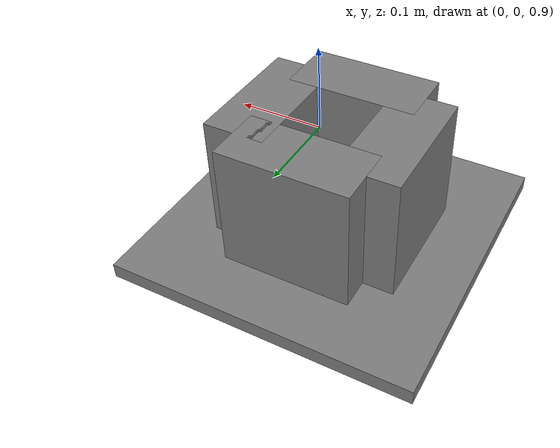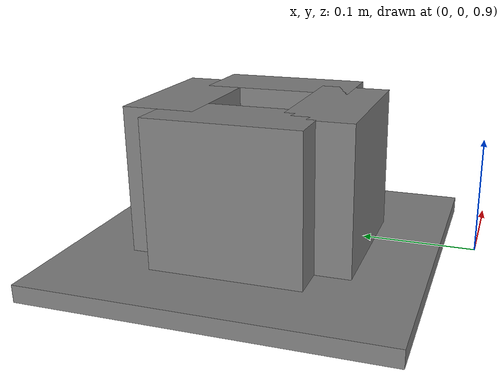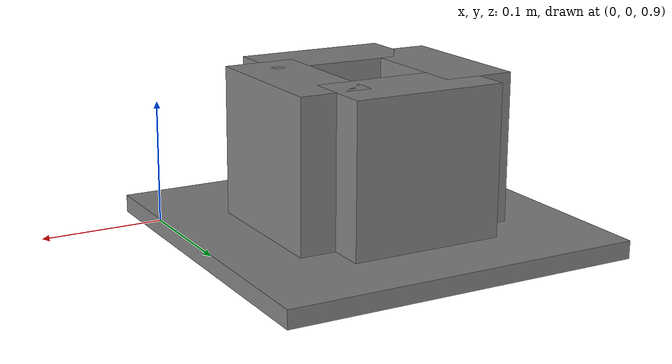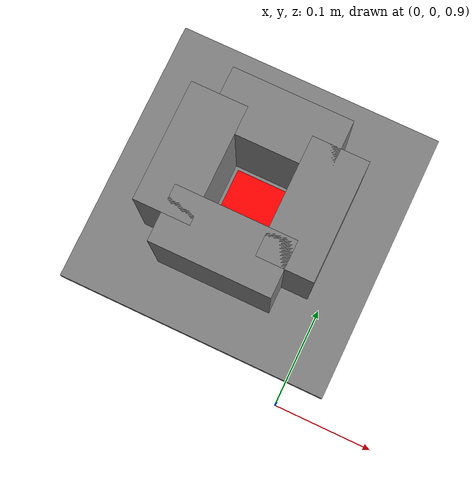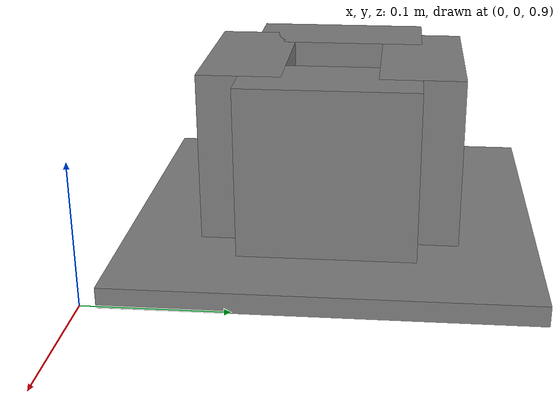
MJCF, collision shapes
<mujoco model="industreal_tray_insert_rectangular_peg_12mm">
  <!-- formal asset; XY scaled from official 8mm; Z layout preserved (site above base) -->
  <asset>
    <mesh name="industreal_tray_insert_rectangular_peg_12mm_mesh"
          file="./industreal/mesh/industreal_pegs/industreal_tray_insert_rectangular_peg_12mm.obj"
          scale="4.5 4.5 4.5" />
    <material name="industreal_tray_insert_rectangular_peg_12mm_mat"
              rgba="0.22 0.28 0.34 1"
              specular="0.85"
              shininess="0.75" />
  </asset>

  <worldbody>
    <body name="industreal_tray_insert_rectangular_peg_12mm" pos="-0.1 0.16 0.92">
      <freejoint name="industreal_tray_insert_rectangular_peg_12mm_joint" />

      <geom name="industreal_tray_insert_rectangular_peg_12mm_visual"
            type="mesh"
            mesh="industreal_tray_insert_rectangular_peg_12mm_mesh"
            material="industreal_tray_insert_rectangular_peg_12mm_mat"
            contype="0"
            conaffinity="0"
            density="0"
            group="1" />

      <geom name="industreal_tray_insert_rectangular_peg_12mm_base"
            type="box"
            pos="0 0 0.00675"
            size="0.137000 0.137000 0.00675"
            friction="0.8 0.02 0.002"
            solref="0.0015 1.0"
            solimp="0.995 0.999 0.0001"
            density="100"
            mass="0.01"
            group="3" />

      <geom name="industreal_tray_insert_rectangular_peg_12mm_wall_pos_y"
            type="box"
            pos="0 0.058225 0.06975"
            size="0.058225 0.027400 0.05625"
            friction="0.8 0.02 0.002"
            solref="0.0015 1.0"
            solimp="0.995 0.999 0.0001"
            density="100"
            mass="0.01"
            group="3" />
      <geom name="industreal_tray_insert_rectangular_peg_12mm_wall_neg_y"
            type="box"
            pos="0 -0.058225 0.06975"
            size="0.058225 0.027400 0.05625"
            friction="0.8 0.02 0.002"
            solref="0.0015 1.0"
            solimp="0.995 0.999 0.0001"
            density="100"
            mass="0.01"
            group="3" />
      <geom name="industreal_tray_insert_rectangular_peg_12mm_wall_pos_x"
            type="box"
            pos="0.058225 0 0.06975"
            size="0.027400 0.058225 0.05625"
            friction="0.8 0.02 0.002"
            solref="0.0015 1.0"
            solimp="0.995 0.999 0.0001"
            density="100"
            mass="0.01"
            group="3" />
      <geom name="industreal_tray_insert_rectangular_peg_12mm_wall_neg_x"
            type="box"
            pos="-0.058225 0 0.06975"
            size="0.027400 0.058225 0.05625"
            friction="0.8 0.02 0.002"
            solref="0.0015 1.0"
            solimp="0.995 0.999 0.0001"
            density="100"
            mass="0.01"
            group="3" />

      <geom name="industreal_tray_insert_rectangular_peg_12mm_bottom_contact"
            type="box"
            pos="0 0 0.0145"
            size="0.027400 0.027400 0.001"
            friction="0.8 0.02 0.002"
            solref="0.0015 1.0"
            solimp="0.995 0.999 0.0001"
            density="100"
            mass="0.01"
            rgba="1 0 0 1"
            group="3" />

      <site name="industreal_tray_insert_rectangular_peg_12mm_socket_site"
            pos="0 0 0.027"
            size="0.006 0.006 0.006"
            rgba="0 0 1 0" />
    </body>
  </worldbody>
</mujoco>
